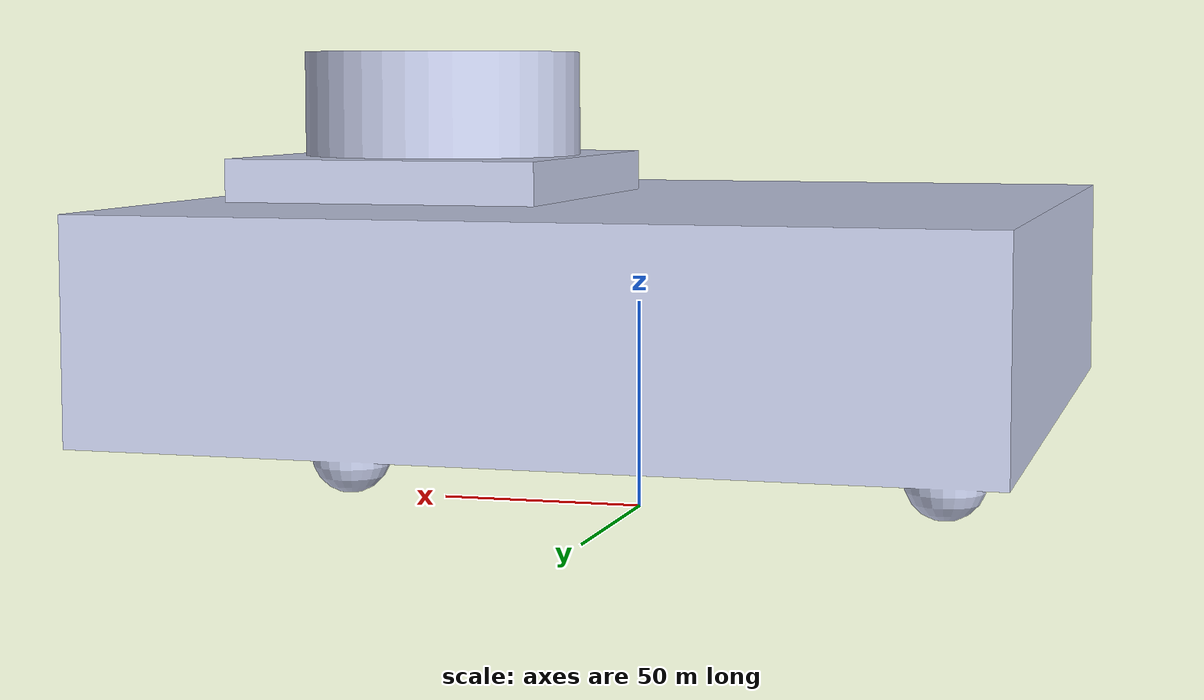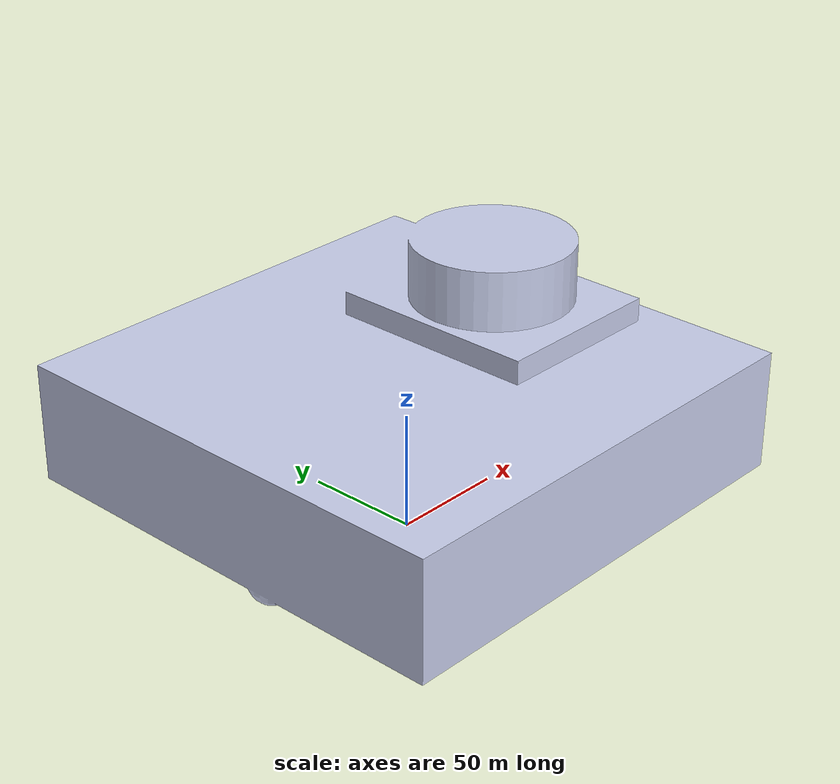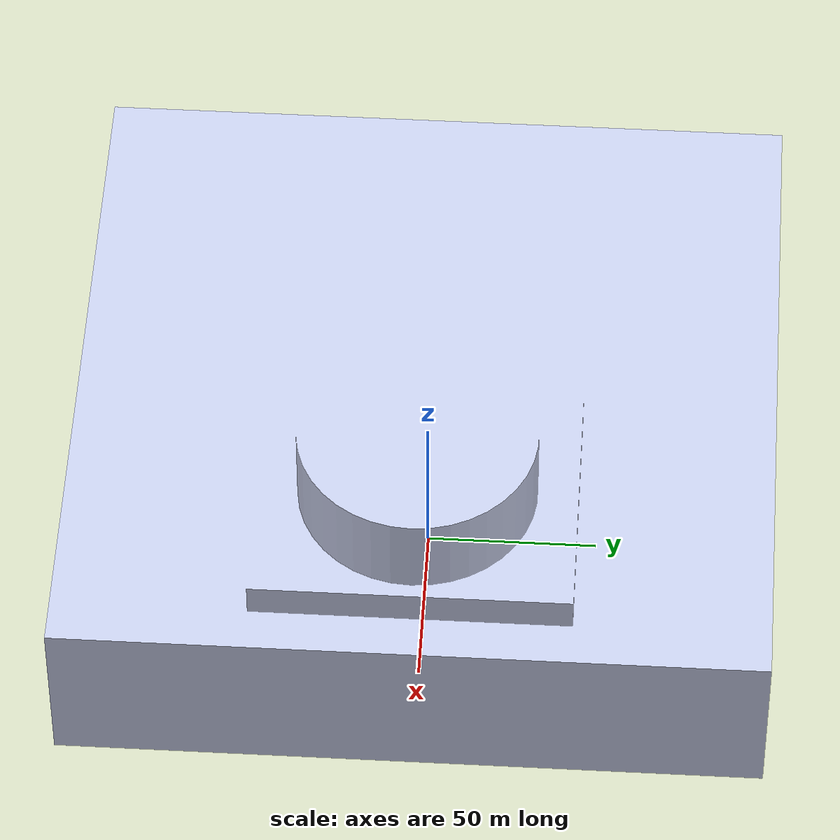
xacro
<?xml version="1.0"?>
<robot xmlns:xacro="http://www.ros.org/wiki/xacro" name="my_robot">

  <xacro:arg name="sim_mode" default="false"/>
  <xacro:arg name="use_mock_hardware" default="false"/>
  <xacro:arg name="serial_device" default="/dev/ttyUSB0"/>
  <xacro:arg name="baud_rate" default="115200"/>
  <xacro:arg name="enc_counts_per_rev" default="340"/>

  <xacro:include filename="solidworks_gen.xacro"/>
  <xacro:include filename="sensors.xacro"/>
  <xacro:include filename="robot_control.xacro"/>

</robot>

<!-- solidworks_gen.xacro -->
<robot xmlns:xacro="http://www.ros.org/wiki/xacro">

  <!-- needed -->
  <link name="base_footprint"/>
  <joint name="base_footprint_joint" type="fixed">
    <parent link="base_footprint"/>
    <child link="base_link"/>
    <origin xyz="0 0 0.0589" rpy="0 0 0"/>
  </joint>

  <!-- Dummy base_link  -->
  <link name="base_link"/>

  <!-- Chassis holds all SolidWorks geometry -->
  <joint name="base_link_joint" type="fixed">
    <parent link="base_link"/>
    <child link="chassis_link"/>
    <origin xyz="0 0 0" rpy="0 0 0"/>
  </joint>

  <link
    name="chassis_link">
    <inertial>
      <origin
        xyz="-0.00532200345472322 -2.89727839073439E-05 0.0205340312252205"
        rpy="0 0 0" />
      <mass
        value="0.587519581152304" />
      <inertia
        ixx="0.000985881224021901"
        ixy="6.35861994897702E-06"
        ixz="1.18299056373326E-09"
        iyy="0.00332617399533149"
        iyz="4.68410909656308E-12"
        izz="0.00429896157620389" />
    </inertial>
    <visual>
      <origin
        xyz="0 0 0"
        rpy="0 0 0" />
      <geometry>
        <mesh
          filename="file://$(find diff_robot_description)/meshes/base_link.STL" />
      </geometry>
      <material
        name="">
        <color
          rgba="0.792156862745098 0.819607843137255 0.933333333333333 1" />
      </material>
    </visual>
    <collision>
      <origin
        xyz="0 0 0"
        rpy="0 0 0" />
      <geometry>
        <mesh
          filename="file://$(find diff_robot_description)/meshes/base_link.STL" />
      </geometry>
    </collision>
  </link>
  <link
    name="left_wheel_link">
    <inertial>
      <origin
        xyz="0.000226950266131398 -0.000822663546008351 -0.0141167375775528"
        rpy="0 0 0" />
      <mass
        value="0.0419260450490871" />
      <inertia
        ixx="1.83755962185369E-05"
        ixy="-8.74106100452391E-09"
        ixz="1.04296609518235E-10"
        iyy="1.84059038445016E-05"
        iyz="-4.18293401143653E-10"
        izz="3.09191345916328E-05" />
    </inertial>
    <visual>
      <origin
        xyz="0 0 0"
        rpy="0 0 0" />
      <geometry>
        <mesh
          filename="file://$(find diff_robot_description)/meshes/left_wheel_link.STL" />
      </geometry>
      <material
        name="">
        <color
          rgba="0.792156862745098 0.819607843137255 0.933333333333333 1" />
      </material>
    </visual>
    <collision>
      <origin
        xyz="0 0 0"
        rpy="0 0 0" />
      <geometry>
        <mesh
          filename="file://$(find diff_robot_description)/meshes/left_wheel_link.STL" />
      </geometry>
    </collision>
  </link>
  <joint
    name="left_wheel_joint"
    type="continuous">
    <origin
      xyz="-0.07135 0.10579 -0.0264"
      rpy="-1.5708 0 0" />
    <parent
      link="chassis_link" />
    <child
      link="left_wheel_link" />
    <axis
      xyz="0 0 -1" />
    <dynamics
      damping="0.1"
      friction="2.0" />
  </joint>
  <link
    name="right_wheel_link">
    <inertial>
      <origin
        xyz="5.80252005439874E-05 0.000851419291212574 0.0141167375775615"
        rpy="0 0 0" />
      <mass
        value="0.0419260450490687" />
      <inertia
        ixx="1.83733836962044E-05"
        ixy="2.11059076155946E-09"
        ixz="-1.86283567509692E-11"
        iyy="1.84081163668218E-05"
        iyz="-4.30697245532457E-10"
        izz="3.09191345916282E-05" />
    </inertial>
    <visual>
      <origin
        xyz="0 0 0"
        rpy="0 0 0" />
      <geometry>
        <mesh
          filename="file://$(find diff_robot_description)/meshes/right_wheel_link.STL" />
      </geometry>
      <material
        name="">
        <color
          rgba="0.792156862745098 0.819607843137255 0.933333333333333 1" />
      </material>
    </visual>
    <collision>
      <origin
        xyz="0 0 0"
        rpy="0 0 0" />
      <geometry>
        <mesh
          filename="file://$(find diff_robot_description)/meshes/right_wheel_link.STL" />
      </geometry>
    </collision>
  </link>
  <joint
    name="right_wheel_joint"
    type="continuous">
    <origin
      xyz="-0.07135 -0.10581 -0.0264"
      rpy="-1.5708 0 0" />
    <parent
      link="chassis_link" />
    <child
      link="right_wheel_link" />
    <axis
      xyz="0 0 -1" />
    <dynamics
      damping="0.1"
      friction="2.0" />
  </joint>
  <link
    name="right_caster_link">
    <inertial>
      <origin
        xyz="0.00268816148973561 -0.00203536418614769 0.00191349352759729"
        rpy="0 0 0" />
      <mass
        value="0.0332686534414054" />
      <inertia
        ixx="3.95101603832686E-06"
        ixy="8.38120688817775E-08"
        ixz="1.70812071112867E-08"
        iyy="3.31627423081446E-06"
        iyz="-1.11469659665923E-08"
        izz="5.95635417481321E-06" />
    </inertial>
    <visual>
      <origin
        xyz="0 0 0"
        rpy="0 0 0" />
      <geometry>
        <mesh
          filename="file://$(find diff_robot_description)/meshes/right_caster_link.STL" />
      </geometry>
      <material
        name="">
        <color
          rgba="0.792156862745098 0.819607843137255 0.933333333333333 1" />
      </material>
    </visual>
    <collision>
      <origin
        xyz="0 0 0"
        rpy="0 0 0" />
      <geometry>
        <mesh
          filename="file://$(find diff_robot_description)/meshes/right_caster_link.STL" />
      </geometry>
    </collision>
  </link>
  <joint
    name="right_caster_joint"
    type="fixed">
    <origin
      xyz="0.08865 -0.044508 -0.025"
      rpy="0 0 0" />
    <parent
      link="chassis_link" />
    <child
      link="right_caster_link" />
    <axis
      xyz="0 0 0" />
  </joint>
  <link
    name="left_caster_link">
    <inertial>
      <origin
        xyz="0.00268816148974094 -0.00147315327391973 0.00191349352759895"
        rpy="0 0 0" />
      <mass
        value="0.0332686534414053" />
      <inertia
        ixx="3.95101603832685E-06"
        ixy="8.38120688817571E-08"
        ixz="1.70812071113248E-08"
        iyy="3.31627423081444E-06"
        iyz="-1.11469659666131E-08"
        izz="5.95635417481318E-06" />
    </inertial>
    <visual>
      <origin
        xyz="0 0 0"
        rpy="0 0 0" />
      <geometry>
        <mesh
          filename="file://$(find diff_robot_description)/meshes/left_caster_link.STL" />
      </geometry>
      <material
        name="">
        <color
          rgba="0.792156862745098 0.819607843137255 0.933333333333333 1" />
      </material>
    </visual>
    <collision>
      <origin
        xyz="0 0 0"
        rpy="0 0 0" />
      <geometry>
        <mesh
          filename="file://$(find diff_robot_description)/meshes/left_caster_link.STL" />
      </geometry>
    </collision>
  </link>
  <joint
    name="left_caster_joint"
    type="fixed">
    <origin
      xyz="0.08865 0.044508 -0.025"
      rpy="0 0 0" />
    <parent
      link="chassis_link" />
    <child
      link="left_caster_link" />
    <axis
      xyz="0 0 0" />
  </joint>

<gazebo reference="left_wheel_link">
  <mu1>1.0</mu1>
  <mu2>1.0</mu2>
  <kp>100000</kp>
  <kd>100</kd>
</gazebo>

<gazebo reference="right_wheel_link">
  <mu1>1.0</mu1>
  <mu2>1.0</mu2>
  <kp>100000</kp>
  <kd>100</kd>
</gazebo>

</robot>

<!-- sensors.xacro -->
<robot xmlns:xacro="http://www.ros.org/wiki/xacro">

  <!-- ==================== IMU ==================== -->
  <link name="imu_link">
    <inertial>
      <origin xyz="0 0 0" rpy="0 0 0"/>
      <mass value="0.001"/>
      <inertia ixx="1e-6" ixy="0" ixz="0" iyy="1e-6" iyz="0" izz="1e-6"/>
    </inertial>
    <visual>
      <origin xyz="0 0 0" rpy="0 0 0"/>
      <geometry><box size="0.02 0.02 0.005"/></geometry>
      <material name="imu_material">
        <color rgba="1 0 0 1"/>
      </material>
    </visual>
    <collision>
      <origin xyz="0 0 0" rpy="0 0 0"/>
      <geometry><box size="0.02 0.02 0.005"/></geometry>
    </collision>
  </link>

  <joint name="imu_joint" type="fixed">
    <parent link="chassis_link"/>
    <child link="imu_link"/>
    <origin xyz="0.05 0 0.08" rpy="0 0 0"/>
  </joint>

  <gazebo reference="imu_link">
    <sensor name="imu_sensor" type="imu">
      <always_on>true</always_on>
      <update_rate>100</update_rate>
      <visualize>true</visualize>
      <imu>
        <angular_velocity>
          <x><noise type="gaussian"><mean>0</mean><stddev>0.001</stddev></noise></x>
          <y><noise type="gaussian"><mean>0</mean><stddev>0.001</stddev></noise></y>
          <z><noise type="gaussian"><mean>0</mean><stddev>0.001</stddev></noise></z>
        </angular_velocity>
        <linear_acceleration>
          <x><noise type="gaussian"><mean>0</mean><stddev>0.01</stddev></noise></x>
          <y><noise type="gaussian"><mean>0</mean><stddev>0.01</stddev></noise></y>
          <z><noise type="gaussian"><mean>0</mean><stddev>0.01</stddev></noise></z>
        </linear_acceleration>
      </imu>
      <plugin name="imu_plugin" filename="libgazebo_ros_imu_sensor.so">
        <ros>
          <namespace>/sensors</namespace>
          <remapping>~/out:=imu/data_raw</remapping>
        </ros>
        <frame_name>imu_link</frame_name>
      </plugin>
    </sensor>
  </gazebo>

  <!-- ==================== LIDAR ==================== -->
  <link name="lidar_link">
    <inertial>
      <origin xyz="-0.0014514 3.2754E-06 0.019293" rpy="0 0 0"/>
      <mass value="0.17546"/>
      <inertia ixx="8.2171E-05" ixy="1.6745E-07" ixz="-3.7671E-06"
               iyy="0.00010613" iyz="8.5784E-09" izz="0.00014061"/>
    </inertial>
    <visual>
      <origin xyz="0 0 0" rpy="${pi/2} 0 0"/>
      <geometry>
        <mesh filename="file://$(find diff_robot_description)/meshes/lidar_link.STL"/>
      </geometry>
      <material name="">
        <color rgba="0.79216 0.81961 0.93333 1"/>
      </material>
    </visual>
    <collision>
      <origin xyz="0 0 0" rpy="0 0 0"/>
      <geometry>
        <mesh filename="file://$(find diff_robot_description)/meshes/lidar_link.STL"/>
      </geometry>
    </collision>
  </link>

  <joint name="lidar_joint" type="fixed">
    <origin xyz="0.0990647710242247 0 0.0963999999999987" rpy="0 0 0"/>
    <parent link="chassis_link"/>
    <child link="lidar_link"/>
    <axis xyz="0 0 0"/>
  </joint>

  <gazebo reference="lidar_link">
    <sensor name="laser" type="ray">
      <pose>0 0 0 0 0 0</pose>
      <visualize>true</visualize>
      <update_rate>10</update_rate>
      <ray>
        <scan>
          <horizontal>
            <samples>360</samples>
            <min_angle>-3.14</min_angle>
            <max_angle>3.14</max_angle>
          </horizontal>
        </scan>
        <range>
          <min>0.3</min>
          <max>12</max>
        </range>
      </ray>
      <plugin name="laser_controller" filename="libgazebo_ros_ray_sensor.so">
        <ros>
          <argument>~/out:=scan</argument>
        </ros>
        <output_type>sensor_msgs/LaserScan</output_type>
        <frame_name>lidar_link</frame_name>
      </plugin>
    </sensor>
  </gazebo>

</robot>
